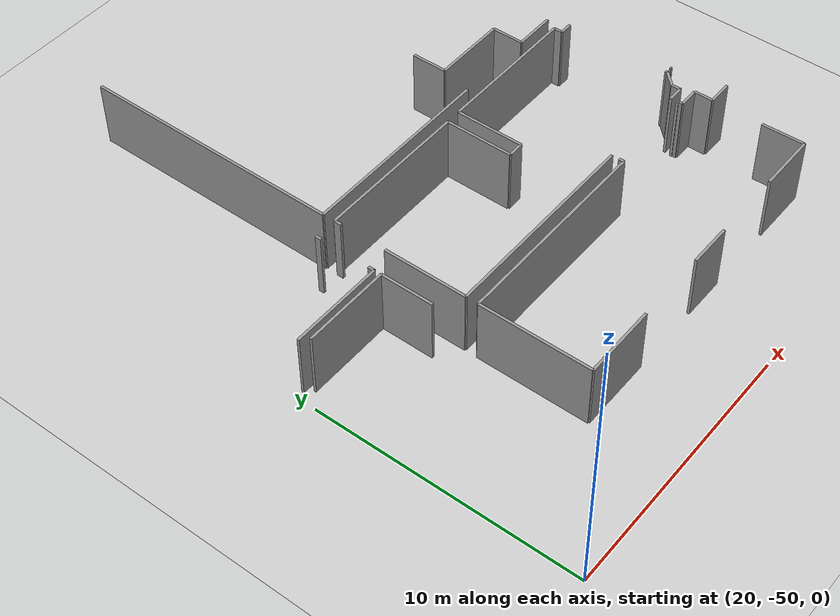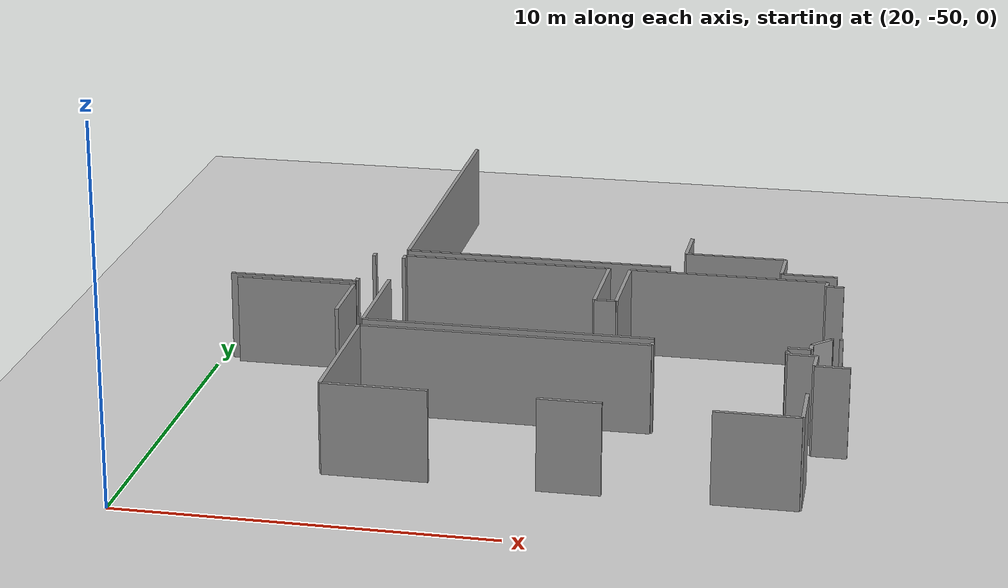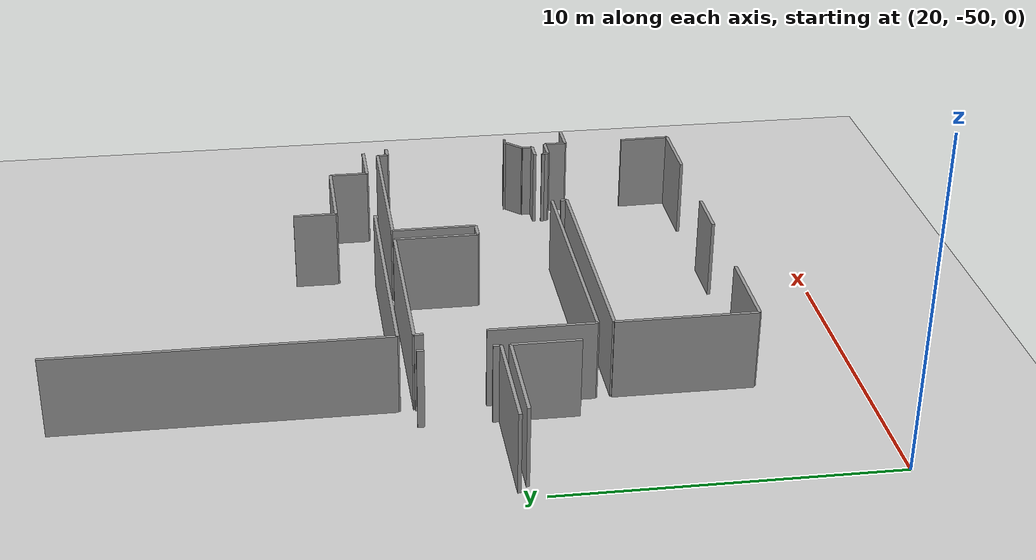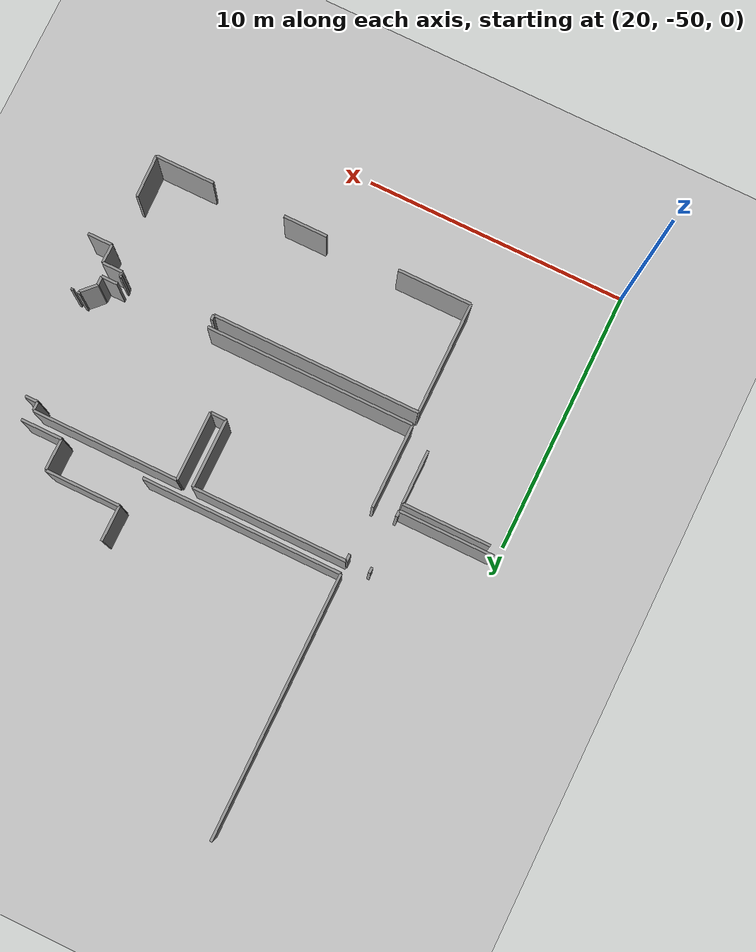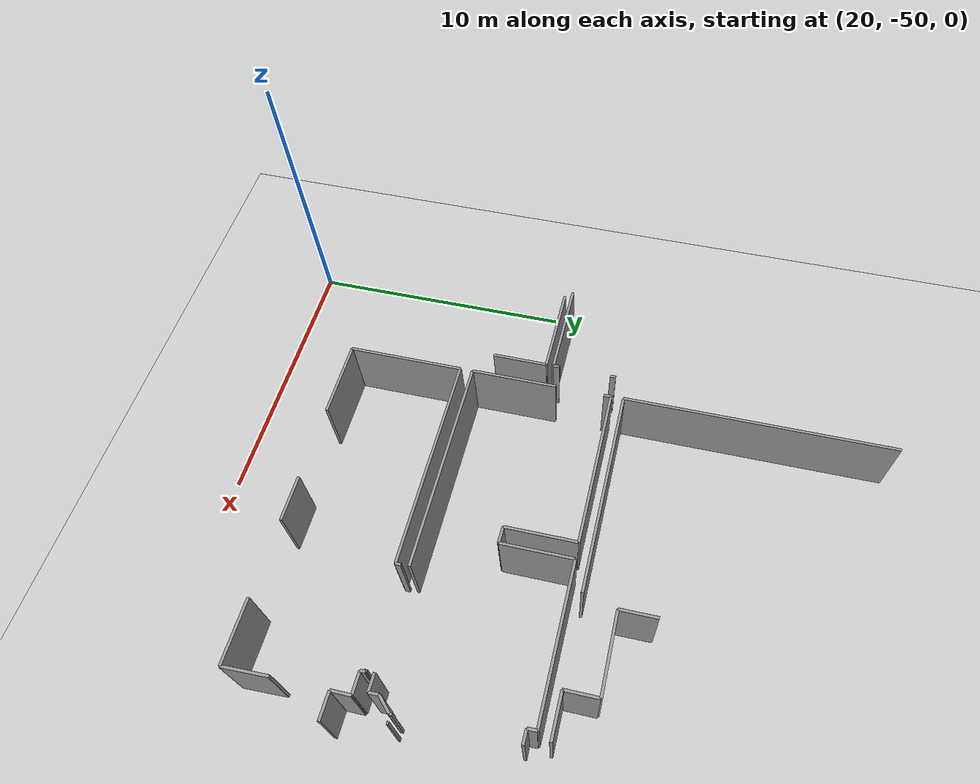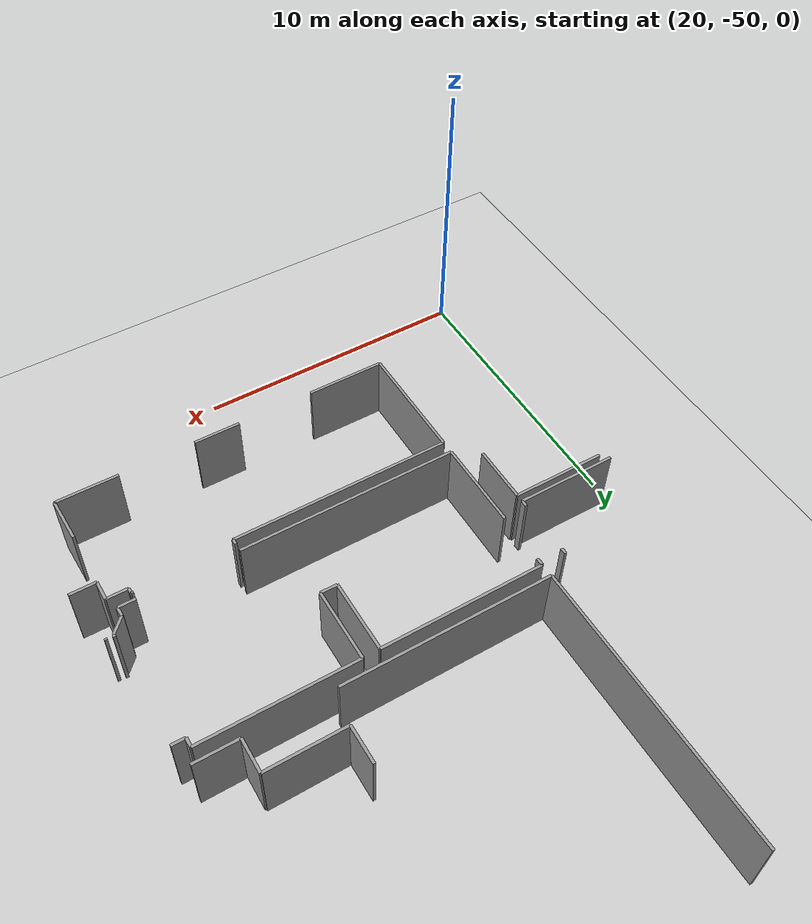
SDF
<sdf version="1.6">
 <world name="default">
  <model name="ground_plane">
   <static>1</static>
   <link name="link">
    <collision name="collision">
     <geometry><plane><normal>0 0 1</normal><size>100 100</size></plane></geometry>
     <surface><friction><ode><mu>100</mu><mu2>50</mu2></ode></friction></surface>
    </collision>
    <visual name="visual">
     <cast_shadows>0</cast_shadows>
     <geometry><plane><normal>0 0 1</normal><size>100 100</size></plane></geometry>
     <material>
      <script><uri>file://media/materials/scripts/gazebo.material</uri><name>Gazebo/Grey</name></script>
     </material>
    </visual>
   </link>
  </model>
  <model name="50025632">
   <static>1</static>
   <link name="Wall_223">
    <collision name="Wall_223_Collision">
     <geometry><box><size>0.0670616700642 0.1 2.5</size></box></geometry>
     <pose>0.0335308350321 0 1.25 0 0 0</pose>
    </collision>
    <visual name="Wall_223_Visual">
     <pose>0.0335308350321 0 1.25 0 0 0</pose>
     <geometry><box><size>0.0670616700642 0.1 2.5</size></box></geometry>
     <material>
      <script><uri>file://media/materials/scripts/gazebo.material</uri><name>Gazebo/Grey</name></script>
      <ambient>1 1 1 1</ambient>
     </material>
    </visual>
    <pose>87.5356741412 -89.8031841592 0 0 0 1.57079632679</pose>
   </link>
   <link name="Wall_294">
    <collision name="Wall_294_Collision">
     <geometry><box><size>7.52513224993 0.1 2.5</size></box></geometry>
     <pose>3.76256612497 0 1.25 0 0 0</pose>
    </collision>
    <visual name="Wall_294_Visual">
     <pose>3.76256612497 0 1.25 0 0 0</pose>
     <geometry><box><size>7.52513224993 0.1 2.5</size></box></geometry>
     <material>
      <script><uri>file://media/materials/scripts/gazebo.material</uri><name>Gazebo/Grey</name></script>
      <ambient>1 1 1 1</ambient>
     </material>
    </visual>
    <pose>82.3626537624 -84.9253367372 0 0 0 3.14159265359</pose>
   </link>
   <link name="Wall_295">
    <collision name="Wall_295_Collision">
     <geometry><box><size>9.93046162053 0.1 2.5</size></box></geometry>
     <pose>4.96523081027 0 1.25 0 0 0</pose>
    </collision>
    <visual name="Wall_295_Visual">
     <pose>4.96523081027 0 1.25 0 0 0</pose>
     <geometry><box><size>9.93046162053 0.1 2.5</size></box></geometry>
     <material>
      <script><uri>file://media/materials/scripts/gazebo.material</uri><name>Gazebo/Grey</name></script>
      <ambient>1 1 1 1</ambient>
     </material>
    </visual>
    <pose>74.8375215124 -84.9253367372 0 0 0 1.57079632679</pose>
   </link>
   <link name="Wall_300">
    <collision name="Wall_300_Collision">
     <geometry><box><size>1.5539763887 0.1 2.5</size></box></geometry>
     <pose>0.776988194352 0 1.25 0 0 0</pose>
    </collision>
    <visual name="Wall_300_Visual">
     <pose>0.776988194352 0 1.25 0 0 0</pose>
     <geometry><box><size>1.5539763887 0.1 2.5</size></box></geometry>
     <material>
      <script><uri>file://media/materials/scripts/gazebo.material</uri><name>Gazebo/Grey</name></script>
      <ambient>1 1 1 1</ambient>
     </material>
    </visual>
    <pose>87.0263610788 -84.9159379426 0 0 0 3.14159265359</pose>
   </link>
   <link name="Wall_301">
    <collision name="Wall_301_Collision">
     <geometry><box><size>1.19796528797 0.1 2.5</size></box></geometry>
     <pose>0.598982643983 0 1.25 0 0 0</pose>
    </collision>
    <visual name="Wall_301_Visual">
     <pose>0.598982643983 0 1.25 0 0 0</pose>
     <geometry><box><size>1.19796528797 0.1 2.5</size></box></geometry>
     <material>
      <script><uri>file://media/materials/scripts/gazebo.material</uri><name>Gazebo/Grey</name></script>
      <ambient>1 1 1 1</ambient>
     </material>
    </visual>
    <pose>85.4723846901 -84.9159379426 0 0 0 1.57079632679</pose>
   </link>
   <link name="Wall_302">
    <collision name="Wall_302_Collision">
     <geometry><box><size>2.82243263668 0.1 2.5</size></box></geometry>
     <pose>1.41121631834 0 1.25 0 0 0</pose>
    </collision>
    <visual name="Wall_302_Visual">
     <pose>1.41121631834 0 1.25 0 0 0</pose>
     <geometry><box><size>2.82243263668 0.1 2.5</size></box></geometry>
     <material>
      <script><uri>file://media/materials/scripts/gazebo.material</uri><name>Gazebo/Grey</name></script>
      <ambient>1 1 1 1</ambient>
     </material>
    </visual>
    <pose>85.4723846901 -83.7179726546 0 0 0 3.14159265359</pose>
   </link>
   <link name="Wall_303">
    <collision name="Wall_303_Collision">
     <geometry><box><size>1.33983628316 0.1 2.5</size></box></geometry>
     <pose>0.669918141579 0 1.25 0 0 0</pose>
    </collision>
    <visual name="Wall_303_Visual">
     <pose>0.669918141579 0 1.25 0 0 0</pose>
     <geometry><box><size>1.33983628316 0.1 2.5</size></box></geometry>
     <material>
      <script><uri>file://media/materials/scripts/gazebo.material</uri><name>Gazebo/Grey</name></script>
      <ambient>1 1 1 1</ambient>
     </material>
    </visual>
    <pose>82.6499520534 -83.7179726546 0 0 0 1.57079632679</pose>
   </link>
   <link name="Wall_309">
    <collision name="Wall_309_Collision">
     <geometry><box><size>0.609397524561 0.1 2.5</size></box></geometry>
     <pose>0.30469876228 0 1.25 0 0 0</pose>
    </collision>
    <visual name="Wall_309_Visual">
     <pose>0.30469876228 0 1.25 0 0 0</pose>
     <geometry><box><size>0.609397524561 0.1 2.5</size></box></geometry>
     <material>
      <script><uri>file://media/materials/scripts/gazebo.material</uri><name>Gazebo/Grey</name></script>
      <ambient>1 1 1 1</ambient>
     </material>
    </visual>
    <pose>86.8175554243 -90.6217683705 0 0 0 3.14159265359</pose>
   </link>
   <link name="Wall_310">
    <collision name="Wall_310_Collision">
     <geometry><box><size>7.85497913849 0.1 2.5</size></box></geometry>
     <pose>3.92748956924 0 1.25 0 0 0</pose>
    </collision>
    <visual name="Wall_310_Visual">
     <pose>3.92748956924 0 1.25 0 0 0</pose>
     <geometry><box><size>7.85497913849 0.1 2.5</size></box></geometry>
     <material>
      <script><uri>file://media/materials/scripts/gazebo.material</uri><name>Gazebo/Grey</name></script>
      <ambient>1 1 1 1</ambient>
     </material>
    </visual>
    <pose>82.7104091651 -90.6217683705 0 0 0 3.14159265359</pose>
   </link>
   <link name="Wall_311">
    <collision name="Wall_311_Collision">
     <geometry><box><size>3.1786977589 0.1 2.5</size></box></geometry>
     <pose>1.58934887945 0 1.25 0 0 0</pose>
    </collision>
    <visual name="Wall_311_Visual">
     <pose>1.58934887945 0 1.25 0 0 0</pose>
     <geometry><box><size>3.1786977589 0.1 2.5</size></box></geometry>
     <material>
      <script><uri>file://media/materials/scripts/gazebo.material</uri><name>Gazebo/Grey</name></script>
      <ambient>1 1 1 1</ambient>
     </material>
    </visual>
    <pose>74.8554300266 -90.6217683705 0 0 0 1.57079632679</pose>
   </link>
   <link name="Wall_312">
    <collision name="Wall_312_Collision">
     <geometry><box><size>0.269008744689 0.1 2.5</size></box></geometry>
     <pose>0.134504372345 0 1.25 0 0 0</pose>
    </collision>
    <visual name="Wall_312_Visual">
     <pose>0.134504372345 0 1.25 0 0 0</pose>
     <geometry><box><size>0.269008744689 0.1 2.5</size></box></geometry>
     <material>
      <script><uri>file://media/materials/scripts/gazebo.material</uri><name>Gazebo/Grey</name></script>
      <ambient>1 1 1 1</ambient>
     </material>
    </visual>
    <pose>74.8554300266 -85.656664571 0 0 0 1.57079632679</pose>
   </link>
   <link name="Wall_313">
    <collision name="Wall_313_Collision">
     <geometry><box><size>5.83487333854 0.1 2.5</size></box></geometry>
     <pose>2.91743666927 0 1.25 0 0 0</pose>
    </collision>
    <visual name="Wall_313_Visual">
     <pose>2.91743666927 0 1.25 0 0 0</pose>
     <geometry><box><size>5.83487333854 0.1 2.5</size></box></geometry>
     <material>
      <script><uri>file://media/materials/scripts/gazebo.material</uri><name>Gazebo/Grey</name></script>
      <ambient>1 1 1 1</ambient>
     </material>
    </visual>
    <pose>74.8554300266 -85.3876558263 0 0 0 0.0</pose>
   </link>
   <link name="Wall_314">
    <collision name="Wall_314_Collision">
     <geometry><box><size>2.58352543708 0.1 2.5</size></box></geometry>
     <pose>1.29176271854 0 1.25 0 0 0</pose>
    </collision>
    <visual name="Wall_314_Visual">
     <pose>1.29176271854 0 1.25 0 0 0</pose>
     <geometry><box><size>2.58352543708 0.1 2.5</size></box></geometry>
     <material>
      <script><uri>file://media/materials/scripts/gazebo.material</uri><name>Gazebo/Grey</name></script>
      <ambient>1 1 1 1</ambient>
     </material>
    </visual>
    <pose>80.6903033651 -85.3876558263 0 0 0 -1.57079632679</pose>
   </link>
   <link name="Wall_315">
    <collision name="Wall_315_Collision">
     <geometry><box><size>0.595426343297 0.1 2.5</size></box></geometry>
     <pose>0.297713171649 0 1.25 0 0 0</pose>
    </collision>
    <visual name="Wall_315_Visual">
     <pose>0.297713171649 0 1.25 0 0 0</pose>
     <geometry><box><size>0.595426343297 0.1 2.5</size></box></geometry>
     <material>
      <script><uri>file://media/materials/scripts/gazebo.material</uri><name>Gazebo/Grey</name></script>
      <ambient>1 1 1 1</ambient>
     </material>
    </visual>
    <pose>80.6903033651 -87.9711812634 0 0 0 0.0</pose>
   </link>
   <link name="Wall_316">
    <collision name="Wall_316_Collision">
     <geometry><box><size>2.59305124248 0.1 2.5</size></box></geometry>
     <pose>1.29652562124 0 1.25 0 0 0</pose>
    </collision>
    <visual name="Wall_316_Visual">
     <pose>1.29652562124 0 1.25 0 0 0</pose>
     <geometry><box><size>2.59305124248 0.1 2.5</size></box></geometry>
     <material>
      <script><uri>file://media/materials/scripts/gazebo.material</uri><name>Gazebo/Grey</name></script>
      <ambient>1 1 1 1</ambient>
     </material>
    </visual>
    <pose>81.2857297084 -87.9711812634 0 0 0 1.57079632679</pose>
   </link>
   <link name="Wall_317">
    <collision name="Wall_317_Collision">
     <geometry><box><size>5.50820171846 0.1 2.5</size></box></geometry>
     <pose>2.75410085923 0 1.25 0 0 0</pose>
    </collision>
    <visual name="Wall_317_Visual">
     <pose>2.75410085923 0 1.25 0 0 0</pose>
     <geometry><box><size>5.50820171846 0.1 2.5</size></box></geometry>
     <material>
      <script><uri>file://media/materials/scripts/gazebo.material</uri><name>Gazebo/Grey</name></script>
      <ambient>1 1 1 1</ambient>
     </material>
    </visual>
    <pose>81.2857297084 -85.3781300209 0 0 0 0.0</pose>
   </link>
   <link name="Wall_318">
    <collision name="Wall_318_Collision">
     <geometry><box><size>0.326544609347 0.1 2.5</size></box></geometry>
     <pose>0.163272304673 0 1.25 0 0 0</pose>
    </collision>
    <visual name="Wall_318_Visual">
     <pose>0.163272304673 0 1.25 0 0 0</pose>
     <geometry><box><size>0.326544609347 0.1 2.5</size></box></geometry>
     <material>
      <script><uri>file://media/materials/scripts/gazebo.material</uri><name>Gazebo/Grey</name></script>
      <ambient>1 1 1 1</ambient>
     </material>
    </visual>
    <pose>86.7939314269 -85.3781300209 0 0 0 -1.57079632679</pose>
   </link>
   <link name="Wall_319">
    <collision name="Wall_319_Collision">
     <geometry><box><size>0.482894828758 0.1 2.5</size></box></geometry>
     <pose>0.241447414379 0 1.25 0 0 0</pose>
    </collision>
    <visual name="Wall_319_Visual">
     <pose>0.241447414379 0 1.25 0 0 0</pose>
     <geometry><box><size>0.482894828758 0.1 2.5</size></box></geometry>
     <material>
      <script><uri>file://media/materials/scripts/gazebo.material</uri><name>Gazebo/Grey</name></script>
      <ambient>1 1 1 1</ambient>
     </material>
    </visual>
    <pose>86.7939314269 -85.7046746302 0 0 0 0.0</pose>
   </link>
   <link name="Wall_320">
    <collision name="Wall_320_Collision">
     <geometry><box><size>0.0849701842291 0.1 2.5</size></box></geometry>
     <pose>0.0424850921145 0 1.25 0 0 0</pose>
    </collision>
    <visual name="Wall_320_Visual">
     <pose>0.0424850921145 0 1.25 0 0 0</pose>
     <geometry><box><size>0.0849701842291 0.1 2.5</size></box></geometry>
     <material>
      <script><uri>file://media/materials/scripts/gazebo.material</uri><name>Gazebo/Grey</name></script>
      <ambient>1 1 1 1</ambient>
     </material>
    </visual>
    <pose>87.2768262557 -89.7137685991 0 0 0 -1.57079632679</pose>
   </link>
   <link name="Wall_321">
    <collision name="Wall_321_Collision">
     <geometry><box><size>0.676547757713 0.1 2.5</size></box></geometry>
     <pose>0.338273878856 0 1.25 0 0 0</pose>
    </collision>
    <visual name="Wall_321_Visual">
     <pose>0.338273878856 0 1.25 0 0 0</pose>
     <geometry><box><size>0.676547757713 0.1 2.5</size></box></geometry>
     <material>
      <script><uri>file://media/materials/scripts/gazebo.material</uri><name>Gazebo/Grey</name></script>
      <ambient>1 1 1 1</ambient>
     </material>
    </visual>
    <pose>87.2768262557 -89.7987387834 0 0 0 -2.33920196763</pose>
   </link>
   <link name="Wall_322">
    <collision name="Wall_322_Collision">
     <geometry><box><size>0.336755650958 0.1 2.5</size></box></geometry>
     <pose>0.168377825479 0 1.25 0 0 0</pose>
    </collision>
    <visual name="Wall_322_Visual">
     <pose>0.168377825479 0 1.25 0 0 0</pose>
     <geometry><box><size>0.336755650958 0.1 2.5</size></box></geometry>
     <material>
      <script><uri>file://media/materials/scripts/gazebo.material</uri><name>Gazebo/Grey</name></script>
      <ambient>1 1 1 1</ambient>
     </material>
    </visual>
    <pose>86.8066325008 -90.2851899128 0 0 0 -1.53835488237</pose>
   </link>
   <link name="Wall_323">
    <collision name="Wall_323_Collision">
     <geometry><box><size>2.23068960481 0.1 2.5</size></box></geometry>
     <pose>1.1153448024 0 1.25 0 0 0</pose>
    </collision>
    <visual name="Wall_323_Visual">
     <pose>1.1153448024 0 1.25 0 0 0</pose>
     <geometry><box><size>2.23068960481 0.1 2.5</size></box></geometry>
     <material>
      <script><uri>file://media/materials/scripts/gazebo.material</uri><name>Gazebo/Grey</name></script>
      <ambient>1 1 1 1</ambient>
     </material>
    </visual>
    <pose>87.0520172481 -95.3235789086 0 0 0 3.14159265359</pose>
   </link>
   <link name="Wall_324">
    <collision name="Wall_324_Collision">
     <geometry><box><size>1.65698209784 0.1 2.5</size></box></geometry>
     <pose>0.828491048918 0 1.25 0 0 0</pose>
    </collision>
    <visual name="Wall_324_Visual">
     <pose>0.828491048918 0 1.25 0 0 0</pose>
     <geometry><box><size>1.65698209784 0.1 2.5</size></box></geometry>
     <material>
      <script><uri>file://media/materials/scripts/gazebo.material</uri><name>Gazebo/Grey</name></script>
      <ambient>1 1 1 1</ambient>
     </material>
    </visual>
    <pose>82.0740853639 -95.3235789086 0 0 0 3.14159265359</pose>
   </link>
   <link name="Wall_325">
    <collision name="Wall_325_Collision">
     <geometry><box><size>2.78852076943 0.1 2.5</size></box></geometry>
     <pose>1.39426038472 0 1.25 0 0 0</pose>
    </collision>
    <visual name="Wall_325_Visual">
     <pose>1.39426038472 0 1.25 0 0 0</pose>
     <geometry><box><size>2.78852076943 0.1 2.5</size></box></geometry>
     <material>
      <script><uri>file://media/materials/scripts/gazebo.material</uri><name>Gazebo/Grey</name></script>
      <ambient>1 1 1 1</ambient>
     </material>
    </visual>
    <pose>77.6478881289 -95.3235789086 0 0 0 3.14159265359</pose>
   </link>
   <link name="Wall_326">
    <collision name="Wall_326_Collision">
     <geometry><box><size>4.23123575098 0.1 2.5</size></box></geometry>
     <pose>2.11561787549 0 1.25 0 0 0</pose>
    </collision>
    <visual name="Wall_326_Visual">
     <pose>2.11561787549 0 1.25 0 0 0</pose>
     <geometry><box><size>4.23123575098 0.1 2.5</size></box></geometry>
     <material>
      <script><uri>file://media/materials/scripts/gazebo.material</uri><name>Gazebo/Grey</name></script>
      <ambient>1 1 1 1</ambient>
     </material>
    </visual>
    <pose>74.8593673595 -95.3235789086 0 0 0 1.57079632679</pose>
   </link>
   <link name="Wall_327">
    <collision name="Wall_327_Collision">
     <geometry><box><size>7.84939066598 0.1 2.5</size></box></geometry>
     <pose>3.92469533299 0 1.25 0 0 0</pose>
    </collision>
    <visual name="Wall_327_Visual">
     <pose>3.92469533299 0 1.25 0 0 0</pose>
     <geometry><box><size>7.84939066598 0.1 2.5</size></box></geometry>
     <material>
      <script><uri>file://media/materials/scripts/gazebo.material</uri><name>Gazebo/Grey</name></script>
      <ambient>1 1 1 1</ambient>
     </material>
    </visual>
    <pose>74.8593673595 -91.0923431576 0 0 0 0.0</pose>
   </link>
   <link name="Wall_328">
    <collision name="Wall_328_Collision">
     <geometry><box><size>0.192167247741 0.1 2.5</size></box></geometry>
     <pose>0.0960836238704 0 1.25 0 0 0</pose>
    </collision>
    <visual name="Wall_328_Visual">
     <pose>0.0960836238704 0 1.25 0 0 0</pose>
     <geometry><box><size>0.192167247741 0.1 2.5</size></box></geometry>
     <material>
      <script><uri>file://media/materials/scripts/gazebo.material</uri><name>Gazebo/Grey</name></script>
      <ambient>1 1 1 1</ambient>
     </material>
    </visual>
    <pose>82.7087580255 -91.0923431576 0 0 0 1.57079632679</pose>
   </link>
   <link name="Wall_329">
    <collision name="Wall_329_Collision">
     <geometry><box><size>0.0758254110385 0.1 2.5</size></box></geometry>
     <pose>0.0379127055192 0 1.25 0 0 0</pose>
    </collision>
    <visual name="Wall_329_Visual">
     <pose>0.0379127055192 0 1.25 0 0 0</pose>
     <geometry><box><size>0.0758254110385 0.1 2.5</size></box></geometry>
     <material>
      <script><uri>file://media/materials/scripts/gazebo.material</uri><name>Gazebo/Grey</name></script>
      <ambient>1 1 1 1</ambient>
     </material>
    </visual>
    <pose>86.1760241828 -90.9001759099 0 0 0 0.0</pose>
   </link>
   <link name="Wall_330">
    <collision name="Wall_330_Collision">
     <geometry><box><size>0.176036883919 0.1 2.5</size></box></geometry>
     <pose>0.0880184419593 0 1.25 0 0 0</pose>
    </collision>
    <visual name="Wall_330_Visual">
     <pose>0.0880184419593 0 1.25 0 0 0</pose>
     <geometry><box><size>0.176036883919 0.1 2.5</size></box></geometry>
     <material>
      <script><uri>file://media/materials/scripts/gazebo.material</uri><name>Gazebo/Grey</name></script>
      <ambient>1 1 1 1</ambient>
     </material>
    </visual>
    <pose>86.2518495939 -90.9001759099 0 0 0 -1.57079632679</pose>
   </link>
   <link name="Wall_331">
    <collision name="Wall_331_Collision">
     <geometry><box><size>0.75774606743 0.1 2.5</size></box></geometry>
     <pose>0.378873033715 0 1.25 0 0 0</pose>
    </collision>
    <visual name="Wall_331_Visual">
     <pose>0.378873033715 0 1.25 0 0 0</pose>
     <geometry><box><size>0.75774606743 0.1 2.5</size></box></geometry>
     <material>
      <script><uri>file://media/materials/scripts/gazebo.material</uri><name>Gazebo/Grey</name></script>
      <ambient>1 1 1 1</ambient>
     </material>
    </visual>
    <pose>86.2518495939 -91.0762127938 0 0 0 0.0</pose>
   </link>
   <link name="Wall_332">
    <collision name="Wall_332_Collision">
     <geometry><box><size>0.703766503458 0.1 2.5</size></box></geometry>
     <pose>0.351883251729 0 1.25 0 0 0</pose>
    </collision>
    <visual name="Wall_332_Visual">
     <pose>0.351883251729 0 1.25 0 0 0</pose>
     <geometry><box><size>0.703766503458 0.1 2.5</size></box></geometry>
     <material>
      <script><uri>file://media/materials/scripts/gazebo.material</uri><name>Gazebo/Grey</name></script>
      <ambient>1 1 1 1</ambient>
     </material>
    </visual>
    <pose>87.0095956613 -91.0762127938 0 0 0 -1.57079632679</pose>
   </link>
   <link name="Wall_333">
    <collision name="Wall_333_Collision">
     <geometry><box><size>0.927940457366 0.1 2.5</size></box></geometry>
     <pose>0.463970228683 0 1.25 0 0 0</pose>
    </collision>
    <visual name="Wall_333_Visual">
     <pose>0.463970228683 0 1.25 0 0 0</pose>
     <geometry><box><size>0.927940457366 0.1 2.5</size></box></geometry>
     <material>
      <script><uri>file://media/materials/scripts/gazebo.material</uri><name>Gazebo/Grey</name></script>
      <ambient>1 1 1 1</ambient>
     </material>
    </visual>
    <pose>87.0095956613 -91.7799792972 0 0 0 0.0</pose>
   </link>
   <link name="Wall_336">
    <collision name="Wall_336_Collision">
     <geometry><box><size>1.60555243945 0.1 2.5</size></box></geometry>
     <pose>0.802776219723 0 1.25 0 0 0</pose>
    </collision>
    <visual name="Wall_336_Visual">
     <pose>0.802776219723 0 1.25 0 0 0</pose>
     <geometry><box><size>1.60555243945 0.1 2.5</size></box></geometry>
     <material>
      <script><uri>file://media/materials/scripts/gazebo.material</uri><name>Gazebo/Grey</name></script>
      <ambient>1 1 1 1</ambient>
     </material>
    </visual>
    <pose>87.0112468009 -93.7185442029 0 0 0 -1.54540018959</pose>
   </link>
   <link name="Wall_407">
    <collision name="Wall_407_Collision">
     <geometry><box><size>0.213251030375 0.1 2.5</size></box></geometry>
     <pose>0.106625515187 0 1.25 0 0 0</pose>
    </collision>
    <visual name="Wall_407_Visual">
     <pose>0.106625515187 0 1.25 0 0 0</pose>
     <geometry><box><size>0.213251030375 0.1 2.5</size></box></geometry>
     <material>
      <script><uri>file://media/materials/scripts/gazebo.material</uri><name>Gazebo/Grey</name></script>
      <ambient>1 1 1 1</ambient>
     </material>
    </visual>
    <pose>73.9796909829 -85.3661910115 0 0 0 -1.57079632679</pose>
   </link>
   <link name="Wall_408">
    <collision name="Wall_408_Collision">
     <geometry><box><size>0.230397480107 0.1 2.5</size></box></geometry>
     <pose>0.115198740053 0 1.25 0 0 0</pose>
    </collision>
    <visual name="Wall_408_Visual">
     <pose>0.115198740053 0 1.25 0 0 0</pose>
     <geometry><box><size>0.230397480107 0.1 2.5</size></box></geometry>
     <material>
      <script><uri>file://media/materials/scripts/gazebo.material</uri><name>Gazebo/Grey</name></script>
      <ambient>1 1 1 1</ambient>
     </material>
    </visual>
    <pose>73.9796909829 -87.5006064763 0 0 0 -1.57079632679</pose>
   </link>
   <link name="Wall_409">
    <collision name="Wall_409_Collision">
     <geometry><box><size>3.5650644262 0.1 2.5</size></box></geometry>
     <pose>1.7825322131 0 1.25 0 0 0</pose>
    </collision>
    <visual name="Wall_409_Visual">
     <pose>1.7825322131 0 1.25 0 0 0</pose>
     <geometry><box><size>3.5650644262 0.1 2.5</size></box></geometry>
     <material>
      <script><uri>file://media/materials/scripts/gazebo.material</uri><name>Gazebo/Grey</name></script>
      <ambient>1 1 1 1</ambient>
     </material>
    </visual>
    <pose>73.9796909829 -87.7310039564 0 0 0 3.14159265359</pose>
   </link>
   <link name="Wall_479">
    <collision name="Wall_479_Collision">
     <geometry><box><size>2.02112188586 0.1 2.5</size></box></geometry>
     <pose>1.01056094293 0 1.25 0 0 0</pose>
    </collision>
    <visual name="Wall_479_Visual">
     <pose>1.01056094293 0 1.25 0 0 0</pose>
     <geometry><box><size>2.02112188586 0.1 2.5</size></box></geometry>
     <material>
      <script><uri>file://media/materials/scripts/gazebo.material</uri><name>Gazebo/Grey</name></script>
      <ambient>1 1 1 1</ambient>
     </material>
    </visual>
    <pose>73.9868035842 -90.023039748 0 0 0 1.57079632679</pose>
   </link>
   <link name="Wall_480">
    <collision name="Wall_480_Collision">
     <geometry><box><size>3.31205903459 0.1 2.5</size></box></geometry>
     <pose>1.6560295173 0 1.25 0 0 0</pose>
    </collision>
    <visual name="Wall_480_Visual">
     <pose>1.6560295173 0 1.25 0 0 0</pose>
     <geometry><box><size>3.31205903459 0.1 2.5</size></box></geometry>
     <material>
      <script><uri>file://media/materials/scripts/gazebo.material</uri><name>Gazebo/Grey</name></script>
      <ambient>1 1 1 1</ambient>
     </material>
    </visual>
    <pose>73.9868035842 -88.0019178622 0 0 0 3.14159265359</pose>
   </link>
   <pose>-50.15 48.4557939124 0 0 0 0</pose>
  </model>
 </world>
</sdf>
